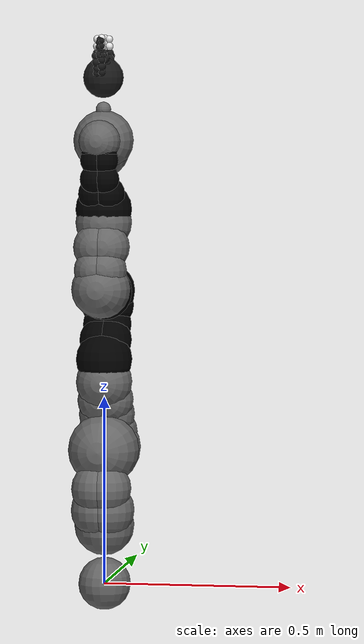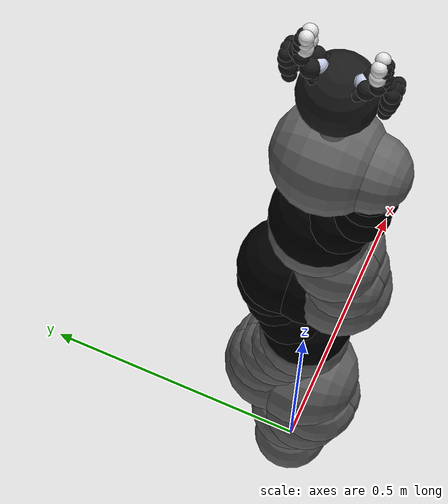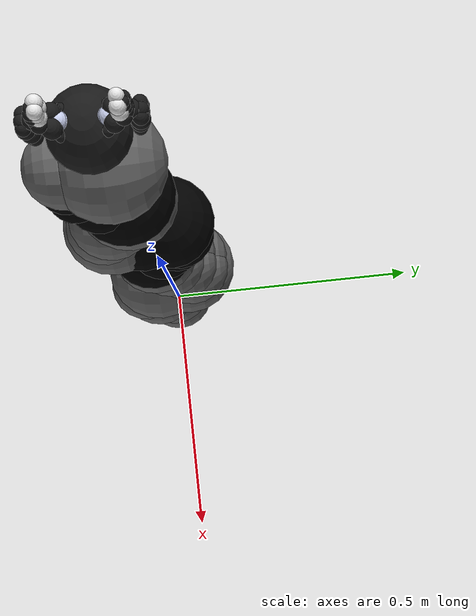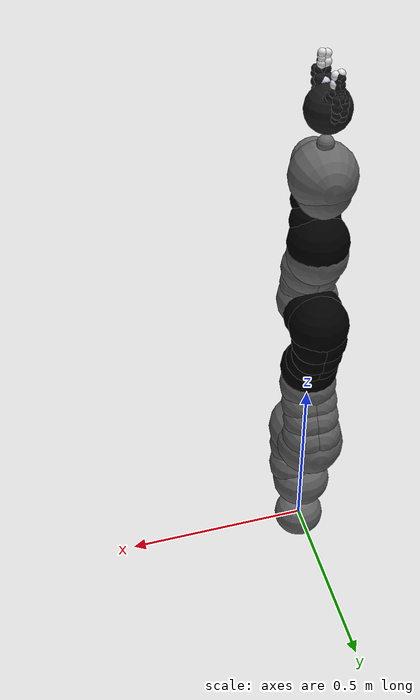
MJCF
<mujoco model="iiwa14">
  <compiler angle="radian"/>

  <worldbody>
    <geom size="0.07" rgba="0.4 0.4 0.4 1"/>
    <body name="link1" pos="0 0 0.1575">
      <inertial pos="0 -0.03 0.12" mass="5.76" diaginertia="0.0333 0.033 0.0123"/>
      <joint name="joint1" pos="0 0 0" axis="0 0 1" range="-2.96706 2.96706" actuatorfrcrange="-320 320"/>
      <geom size="0.08" pos="0 0 -0.0005" rgba="0.4 0.4 0.4 1"/>
      <geom size="0.075" pos="0.01 -0.025 0.0425" rgba="0.4 0.4 0.4 1"/>
      <geom size="0.075" pos="-0.01 -0.025 0.0425" rgba="0.4 0.4 0.4 1"/>
      <geom size="0.07" pos="0.01 -0.045 0.1025" rgba="0.4 0.4 0.4 1"/>
      <geom size="0.07" pos="-0.01 -0.045 0.1025" rgba="0.4 0.4 0.4 1"/>
      <body name="link2" pos="0 0 0.2025" quat="9.38184e-07 9.38187e-07 0.707108 0.707105">
        <inertial pos="0.0003 0.059 0.042" mass="6.35" diaginertia="0.0305 0.0304 0.011"/>
        <joint name="joint2" pos="0 0 0" axis="0 0 1" range="-2.0944 2.0944" actuatorfrcrange="-320 320"/>
        <geom size="0.095" pos="0 0 -0.01" rgba="0.4 0.4 0.4 1"/>
        <geom size="0.09" pos="0 0 0.045" rgba="0.4 0.4 0.4 1"/>
        <geom size="0.07" pos="-0.01 0.04 0.054" rgba="0.4 0.4 0.4 1"/>
        <geom size="0.065" pos="-0.01 0.09 0.04" rgba="0.4 0.4 0.4 1"/>
        <geom size="0.065" pos="-0.01 0.13 0.02" rgba="0.4 0.4 0.4 1"/>
        <geom size="0.07" pos="0.01 0.04 0.054" rgba="0.4 0.4 0.4 1"/>
        <geom size="0.065" pos="0.01 0.09 0.04" rgba="0.4 0.4 0.4 1"/>
        <geom size="0.065" pos="0.01 0.13 0.02" rgba="0.4 0.4 0.4 1"/>
        <geom size="0.075" pos="0 0.18 0" rgba="0.4 0.4 0.4 1"/>
        <body name="link3" pos="0 0.2045 0" quat="9.38184e-07 9.38187e-07 0.707108 0.707105">
          <inertial pos="0 0.03 0.13" mass="3.5" diaginertia="0.025 0.0238 0.0076"/>
          <joint name="joint3" pos="0 0 0" axis="0 0 1" range="-2.96706 2.96706" actuatorfrcrange="-176 176"/>
          <geom size="0.075" pos="0 0 0.0355" rgba="0 0 0 1"/>
          <geom size="0.06" pos="0.01 0.023 0.0855" rgba="0 0 0 1"/>
          <geom size="0.055" pos="0.01 0.048 0.1255" rgba="0 0 0 1"/>
          <geom size="0.06" pos="0.01 0.056 0.1755" rgba="0 0 0 1"/>
          <geom size="0.06" pos="-0.01 0.023 0.0855" rgba="0 0 0 1"/>
          <geom size="0.055" pos="-0.01 0.048 0.1255" rgba="0 0 0 1"/>
          <geom size="0.06" pos="-0.01 0.056 0.1755" rgba="0 0 0 1"/>
          <geom size="0.075" pos="0 0.045 0.2155" rgba="0 0 0 1"/>
          <geom size="0.075" pos="0 0 0.2155" rgba="0 0 0 1"/>
          <body name="link4" pos="0 0 0.2155" quat="0.707105 0.707108 0 0">
            <inertial pos="0 0.067 0.034" mass="3.5" diaginertia="0.017 0.0164 0.006"/>
            <joint name="joint4" pos="0 0 0" axis="0 0 1" range="-2.0944 2.0944" actuatorfrcrange="-176 176"/>
            <geom size="0.078" pos="0 0.01 0.046" rgba="0.4 0.4 0.4 1"/>
            <geom size="0.06" pos="0.01 0.06 0.052" rgba="0.4 0.4 0.4 1"/>
            <geom size="0.065" pos="0.01 0.12 0.034" rgba="0.4 0.4 0.4 1"/>
            <geom size="0.06" pos="-0.01 0.06 0.052" rgba="0.4 0.4 0.4 1"/>
            <geom size="0.065" pos="-0.01 0.12 0.034" rgba="0.4 0.4 0.4 1"/>
            <geom size="0.075" pos="0 0.184 0" rgba="0.4 0.4 0.4 1"/>
            <body name="link5" pos="0 0.1845 0" quat="9.38184e-07 9.38187e-07 0.707108 0.707105">
              <inertial pos="0.0001 0.021 0.076" mass="3.5" diaginertia="0.01 0.0087 0.00449"/>
              <joint name="joint5" pos="0 0 0" axis="0 0 1" range="-2.96706 2.96706" actuatorfrcrange="-110 110"/>
              <geom size="0.075" pos="0 0 0.0335" rgba="0 0 0 1"/>
              <geom size="0.05" pos="-0.012 0.031 0.0755" rgba="0 0 0 1"/>
              <geom size="0.05" pos="0.012 0.031 0.0755" rgba="0 0 0 1"/>
              <geom size="0.04" pos="-0.012 0.06 0.1155" rgba="0 0 0 1"/>
              <geom size="0.04" pos="0.012 0.06 0.1155" rgba="0 0 0 1"/>
              <geom size="0.04" pos="-0.01 0.065 0.1655" rgba="0 0 0 1"/>
              <geom size="0.04" pos="0.01 0.065 0.1655" rgba="0 0 0 1"/>
              <geom size="0.035" pos="-0.012 0.065 0.1855" rgba="0 0 0 1"/>
              <geom size="0.035" pos="0.012 0.065 0.1855" rgba="0 0 0 1"/>
              <body name="link6" pos="0 0 0.2155" quat="0.707105 0.707108 0 0">
                <inertial pos="0 0.0006 0.0004" mass="1.8" diaginertia="0.0049 0.0047 0.0036"/>
                <joint name="joint6" pos="0 0 0" axis="0 0 1" range="-2.0944 2.0944" actuatorfrcrange="-40 40"/>
                <geom size="0.055" pos="0 0 -0.059" rgba="0.4 0.4 0.4 1"/>
                <geom size="0.065" pos="0 -0.03 0.011" rgba="0.4 0.4 0.4 1"/>
                <geom size="0.08" rgba="0.4 0.4 0.4 1"/>
                <body name="link7" pos="0 0.081 0" quat="9.38184e-07 9.38187e-07 0.707108 0.707105">
                  <inertial pos="-0.000205927 0.00317812 0.0480698" quat="0.998577 -0.0531077 -0.00488539 -0.000413108" mass="1.76687" diaginertia="0.00601623 0.00526692 0.00279039"/>
                  <joint name="joint7" pos="0 0 0" axis="0 0 1" range="-3.05433 3.05433" actuatorfrcrange="-40 40"/>
                  <geom size="0.02" pos="0 0 0.001" rgba="0.4 0.4 0.4 1"/>
                  <geom size="0.053503" pos="-1e-06 -1e-06 0.0847621" rgba="0.1 0.1 0.1 1"/>
                  <geom size="0.010984" pos="-1e-06 -0.0312153 0.101816" quat="0 0 0 1" rgba="0.792157 0.819608 0.933333 1"/>
                  <geom size="0.012432" pos="0 -0.0249363 0.125097" quat="0 0 0 1" rgba="0.792157 0.819608 0.933333 1"/>
                  <geom size="0.012226" pos="0 -0.0294773 0.130096" quat="0 0 0 1" rgba="0.792157 0.819608 0.933333 1"/>
                  <geom size="0.01123" pos="0 -0.0302023 0.125565" quat="0 0 0 1" rgba="0.792157 0.819608 0.933333 1"/>
                  <geom size="0.007303" pos="0 -0.0324353 0.114811" quat="0 0 0 1" rgba="0.792157 0.819608 0.933333 1"/>
                  <geom size="0.011497" pos="-0.00488 -0.0636625 0.108449" quat="0 0 0 1" rgba="0.1 0.1 0.1 1"/>
                  <geom size="0.009975" pos="0.006963 -0.0624365 0.0983915" quat="0 0 0 1" rgba="0.1 0.1 0.1 1"/>
                  <geom size="0.010015" pos="-0.008541 -0.0673465 0.1415" quat="0 0 0 1" rgba="0.1 0.1 0.1 1"/>
                  <geom size="0.009339" pos="0.008399 -0.0681875 0.14235" quat="0 0 0 1" rgba="0.1 0.1 0.1 1"/>
                  <geom size="0.012389" pos="0.0059 -0.0644585 0.113995" quat="0 0 0 1" rgba="0.1 0.1 0.1 1"/>
                  <geom size="0.009002" pos="-0.007492 -0.0621125 0.0960135" quat="0 0 0 1" rgba="0.1 0.1 0.1 1"/>
                  <geom size="0.011071" pos="0.007347 -0.0672465 0.131331" quat="0 0 0 1" rgba="0.1 0.1 0.1 1"/>
                  <geom size="0.012221" pos="-0.006071 -0.0657085 0.124496" quat="0 0 0 1" rgba="0.1 0.1 0.1 1"/>
                  <geom size="0.010605" pos="0.000133378 -0.06778 0.143227" quat="0 0 0 1" rgba="0.1 0.1 0.1 1"/>
                  <geom size="0.011577" pos="0.000553378 -0.058781 0.146069" quat="0 0 0 1" rgba="0.1 0.1 0.1 1"/>
                  <geom size="0.012473" pos="0.000175378 -0.051534 0.151336" quat="0 0 0 1" rgba="0.1 0.1 0.1 1"/>
                  <geom size="0.007804" pos="-0.00358862 -0.052773 0.164759" quat="0 0 0 1" rgba="0.1 0.1 0.1 1"/>
                  <geom size="0.008723" pos="0.00412738 -0.052995 0.166931" quat="0 0 0 1" rgba="0.1 0.1 0.1 1"/>
                  <geom size="0.007462" pos="-0.00314462 -0.053009 0.176138" quat="0 0 0 1" rgba="0.1 0.1 0.1 1"/>
                  <geom size="0.00765" pos="-0.00142362 -0.052401 0.183859" quat="0 0 0 1" rgba="0.1 0.1 0.1 1"/>
                  <geom size="0.008548" pos="0.00394038 -0.052786 0.180723" quat="0 0 0 1" rgba="0.1 0.1 0.1 1"/>
                  <geom size="0.010554" pos="0.003856 -0.0461808 0.163659" quat="0 0 0 1" rgba="0.9 0.9 0.9 1"/>
                  <geom size="0.010972" pos="-0.007289 -0.0461808 0.166374" quat="0 0 0 1" rgba="0.9 0.9 0.9 1"/>
                  <geom size="0.009151" pos="0.004375 -0.0461808 0.176469" quat="0 0 0 1" rgba="0.9 0.9 0.9 1"/>
                  <geom size="0.010294" pos="-0.006914 -0.0461808 0.185175" quat="0 0 0 1" rgba="0.9 0.9 0.9 1"/>
                  <geom size="0.009632" pos="0.00422 -0.0461808 0.188072" quat="0 0 0 1" rgba="0.9 0.9 0.9 1"/>
                  <geom size="0.011422" pos="-0.01575 -0.016937 0.108652" quat="0 0 0 1" rgba="0.1 0.1 0.1 1"/>
                  <geom size="0.009271" pos="-0.0145 -0.025266 0.122671" quat="0 0 0 1" rgba="0.1 0.1 0.1 1"/>
                  <geom size="0.012513" pos="-0.009482 -0.036063 0.133801" quat="0 0 0 1" rgba="0.1 0.1 0.1 1"/>
                  <geom size="0.010628" pos="-0.008242 -0.048768 0.148629" quat="0 0 0 1" rgba="0.1 0.1 0.1 1"/>
                  <geom size="0.01315" pos="0.008981 -0.036363 0.134262" quat="0 0 0 1" rgba="0.1 0.1 0.1 1"/>
                  <geom size="0.009999" pos="0.008288 -0.04888 0.148803" quat="0 0 0 1" rgba="0.1 0.1 0.1 1"/>
                  <geom size="0.009398" pos="0.0145 -0.027076 0.121469" quat="0 0 0 1" rgba="0.1 0.1 0.1 1"/>
                  <geom size="0.011428" pos="0.01575 -0.014504 0.110869" quat="0 0 0 1" rgba="0.1 0.1 0.1 1"/>
                  <geom size="0.010984" pos="1e-06 0.0312153 0.101816" rgba="0.792157 0.819608 0.933333 1"/>
                  <geom size="0.012432" pos="0 0.0249363 0.125097" rgba="0.792157 0.819608 0.933333 1"/>
                  <geom size="0.012226" pos="0 0.0294773 0.130096" rgba="0.792157 0.819608 0.933333 1"/>
                  <geom size="0.01123" pos="0 0.0302023 0.125565" rgba="0.792157 0.819608 0.933333 1"/>
                  <geom size="0.007303" pos="0 0.0324353 0.114811" rgba="0.792157 0.819608 0.933333 1"/>
                  <geom size="0.011497" pos="0.00488 0.0636625 0.108449" rgba="0.1 0.1 0.1 1"/>
                  <geom size="0.009975" pos="-0.006963 0.0624365 0.0983915" rgba="0.1 0.1 0.1 1"/>
                  <geom size="0.010015" pos="0.008541 0.0673465 0.1415" rgba="0.1 0.1 0.1 1"/>
                  <geom size="0.009339" pos="-0.008399 0.0681875 0.14235" rgba="0.1 0.1 0.1 1"/>
                  <geom size="0.012389" pos="-0.0059 0.0644585 0.113995" rgba="0.1 0.1 0.1 1"/>
                  <geom size="0.009002" pos="0.007492 0.0621125 0.0960135" rgba="0.1 0.1 0.1 1"/>
                  <geom size="0.011071" pos="-0.007347 0.0672465 0.131331" rgba="0.1 0.1 0.1 1"/>
                  <geom size="0.012221" pos="0.006071 0.0657085 0.124496" rgba="0.1 0.1 0.1 1"/>
                  <geom size="0.010605" pos="-0.000133378 0.06778 0.143227" rgba="0.1 0.1 0.1 1"/>
                  <geom size="0.011577" pos="-0.000553378 0.058781 0.146069" rgba="0.1 0.1 0.1 1"/>
                  <geom size="0.012473" pos="-0.000175378 0.051534 0.151336" rgba="0.1 0.1 0.1 1"/>
                  <geom size="0.007804" pos="0.00358862 0.052773 0.164759" rgba="0.1 0.1 0.1 1"/>
                  <geom size="0.008723" pos="-0.00412738 0.052995 0.166931" rgba="0.1 0.1 0.1 1"/>
                  <geom size="0.007462" pos="0.00314462 0.053009 0.176138" rgba="0.1 0.1 0.1 1"/>
                  <geom size="0.00765" pos="0.00142362 0.052401 0.183859" rgba="0.1 0.1 0.1 1"/>
                  <geom size="0.008548" pos="-0.00394038 0.052786 0.180723" rgba="0.1 0.1 0.1 1"/>
                  <geom size="0.010554" pos="-0.003856 0.0461808 0.163659" rgba="0.9 0.9 0.9 1"/>
                  <geom size="0.010972" pos="0.007289 0.0461808 0.166374" rgba="0.9 0.9 0.9 1"/>
                  <geom size="0.009151" pos="-0.004375 0.0461808 0.176469" rgba="0.9 0.9 0.9 1"/>
                  <geom size="0.010294" pos="0.006914 0.0461808 0.185175" rgba="0.9 0.9 0.9 1"/>
                  <geom size="0.009632" pos="-0.00422 0.0461808 0.188072" rgba="0.9 0.9 0.9 1"/>
                  <geom size="0.011422" pos="0.01575 0.016937 0.108652" rgba="0.1 0.1 0.1 1"/>
                  <geom size="0.009271" pos="0.0145 0.025266 0.122671" rgba="0.1 0.1 0.1 1"/>
                  <geom size="0.012513" pos="0.009482 0.036063 0.133801" rgba="0.1 0.1 0.1 1"/>
                  <geom size="0.010628" pos="0.008242 0.048768 0.148629" rgba="0.1 0.1 0.1 1"/>
                  <geom size="0.01315" pos="-0.008981 0.036363 0.134262" rgba="0.1 0.1 0.1 1"/>
                  <geom size="0.009999" pos="-0.008288 0.04888 0.148803" rgba="0.1 0.1 0.1 1"/>
                  <geom size="0.009398" pos="-0.0145 0.027076 0.121469" rgba="0.1 0.1 0.1 1"/>
                  <geom size="0.011428" pos="-0.01575 0.014504 0.110869" rgba="0.1 0.1 0.1 1"/>
                </body>
              </body>
            </body>
          </body>
        </body>
      </body>
    </body>
  </worldbody>
</mujoco>
